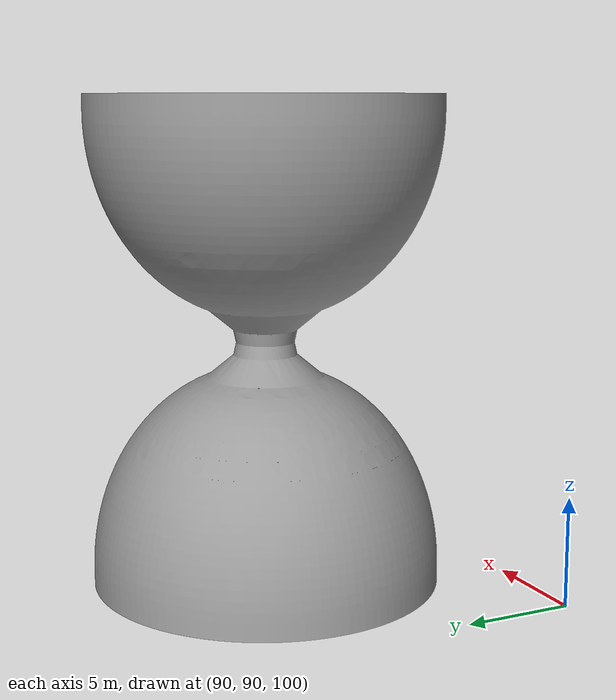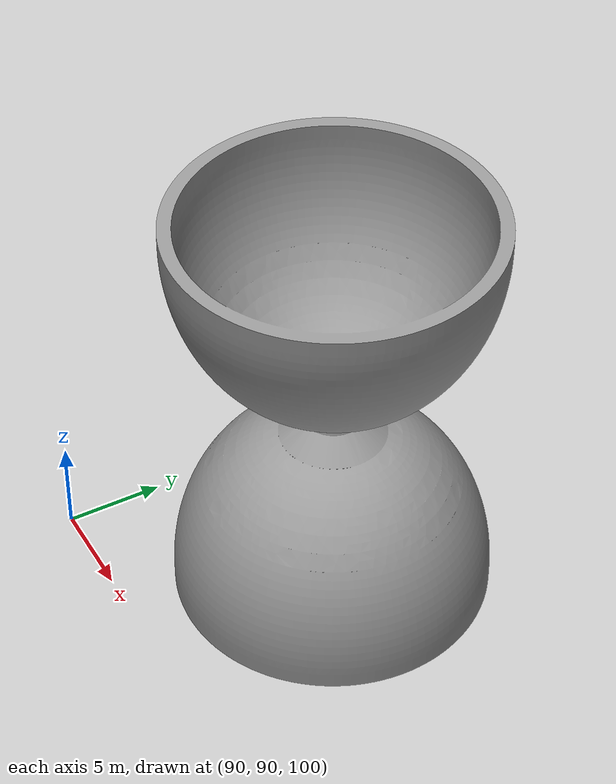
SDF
<?xml version="1.0" ?>
<sdf version="1.7">
  <model name="my_diabolo">
    <pose>100 100 100 0 0 0</pose>
    <link name="link">
      <gravity>0</gravity>
      <collision name="collision">
        <geometry>
          <mesh>
            <uri>model://my_diabolo/meshes/BlueDiabolo.obj</uri>
            <scale>0.127 0.127 0.15</scale>
          </mesh>
        </geometry>
      </collision>
      <visual name="visual">
        <geometry>
          <mesh>
            <uri>model://my_diabolo/meshes/BlueDiabolo.obj</uri>
            <scale>0.127 0.127 0.15</scale>
          </mesh>
        </geometry>
        <material>
          <script>
            <uri>file://media/materials/scripts/gazebo.material</uri>
            <name>Gazebo/Grey</name>
          </script>
        </material>
      </visual>
    </link>
  </model>
</sdf>
